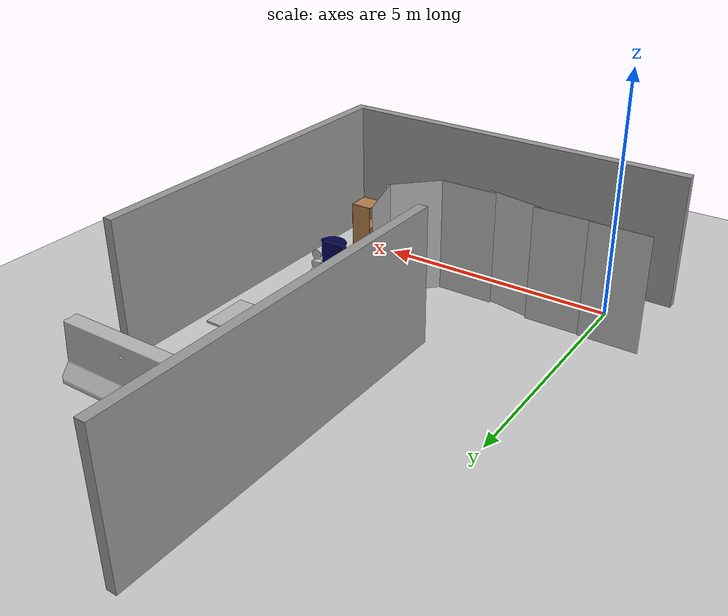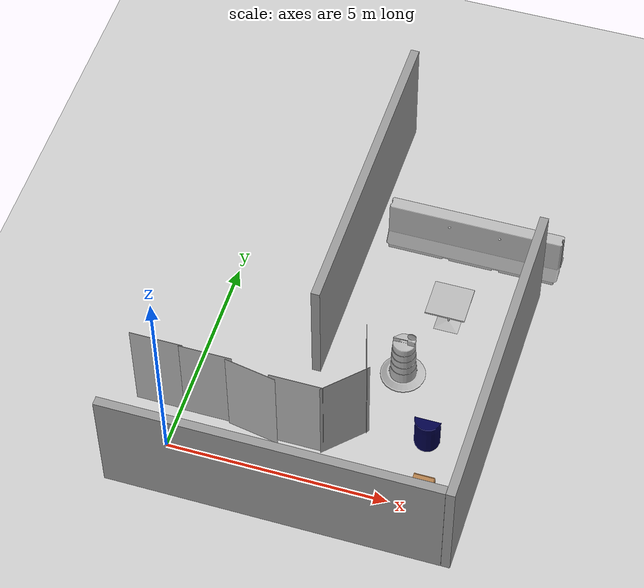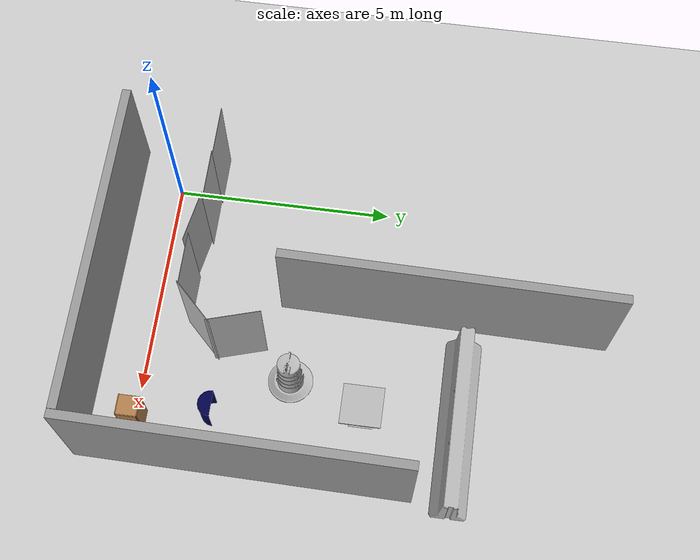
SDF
<sdf version="1.6">
 <world name="default">
  <light name="sun" type="directional">
   <pose>0 0 10 0 -0 0</pose>
   <diffuse>0.8 0.8 0.8 1</diffuse>
   <specular>0.2 0.2 0.2 1</specular>
   <attenuation>
    <range>1000</range>
    <constant>0.9</constant>
    <linear>0.01</linear>
    <quadratic>0.001</quadratic>
   </attenuation>
   <direction>-0.5 0.1 -0.9</direction>
  </light>
  <model name="ground_plane">
   <static>1</static>
   <link name="link">
    <collision name="collision">
     <geometry><plane><normal>0 0 1</normal><size>100 100</size></plane></geometry>
     <surface>
      <contact><collide_bitmask>65535</collide_bitmask></contact>
      <friction><ode><mu>100</mu><mu2>50</mu2></ode></friction>
     </surface>
    </collision>
    <visual name="visual">
     <cast_shadows>0</cast_shadows>
     <geometry><plane><normal>0 0 1</normal><size>100 100</size></plane></geometry>
     <material>
      <script><uri>file://media/materials/scripts/gazebo.material</uri><name>Gazebo/Grey</name></script>
     </material>
    </visual>
   </link>
  </model>
  <gravity>0 0 -9.8</gravity>
  <magnetic_field>6e-06 2.3e-05 -4.2e-05</magnetic_field>
  <atmosphere type="adiabatic"/>
  <physics name="default_physics" default="0" type="ode">
   <max_step_size>0.001</max_step_size>
   <real_time_factor>1</real_time_factor>
   <real_time_update_rate>1000</real_time_update_rate>
  </physics>
  <scene><ambient>0.4 0.4 0.4 1</ambient><background>0.7 0.7 0.7 1</background><shadows>1</shadows></scene>
  <spherical_coordinates>
   <surface_model>EARTH_WGS84</surface_model>
   <latitude_deg>0</latitude_deg>
   <longitude_deg>0</longitude_deg>
   <elevation>0</elevation>
   <heading_deg>0</heading_deg>
  </spherical_coordinates>
  <model name="cafe_table">
   <static>1</static>
   <link name="link">
    <collision name="surface">
     <pose>0 0 0.755 0 -0 0</pose>
     <geometry><box><size>0.913 0.913 0.04</size></box></geometry>
    </collision>
    <collision name="column">
     <pose>0 0 0.37 0 -0 0</pose>
     <geometry><box><size>0.042 0.042 0.74</size></box></geometry>
    </collision>
    <collision name="base">
     <pose>0 0 0.02 0 -0 0</pose>
     <geometry><box><size>0.56 0.56 0.04</size></box></geometry>
    </collision>
    <visual name="visual">
     <geometry><mesh><uri>model://cafe_table/meshes/cafe_table.dae</uri></mesh></geometry>
    </visual>
   </link>
   <pose>5 5 0 0 -0 0</pose>
  </model>
  <model name="grey_wall">
   <static>1</static>
   <link name="link">
    <pose>0 0 1.4 0 -0 0</pose>
    <collision name="collision"><geometry><box><size>7.5 0.2 2.8</size></box></geometry></collision>
    <visual name="visual">
     <cast_shadows>0</cast_shadows>
     <geometry><box><size>7.5 0.2 2.8</size></box></geometry>
     <material>
      <script>
       <uri>model://grey_wall/materials/scripts</uri>
       <uri>model://grey_wall/materials/textures</uri>
       <name>vrc/grey_wall</name>
      </script>
     </material>
    </visual>
   </link>
   <pose>2.75291 -1.08985 0 0 -0 0</pose>
  </model>
  <model name="grey_wall_clone">
   <static>1</static>
   <link name="link">
    <pose>0 0 1.4 0 -0 0</pose>
    <collision name="collision"><geometry><box><size>7.5 0.2 2.8</size></box></geometry></collision>
    <visual name="visual">
     <cast_shadows>0</cast_shadows>
     <geometry><box><size>7.5 0.2 2.8</size></box></geometry>
     <material>
      <script>
       <uri>model://grey_wall/materials/scripts</uri>
       <uri>model://grey_wall/materials/textures</uri>
       <name>vrc/grey_wall</name>
      </script>
     </material>
    </visual>
   </link>
   <pose>6.65645 2.56087 0 0 0 -1.58457</pose>
  </model>
  <model name="nist_maze_wall_240">
   <static>1</static>
   <link name="nist__maze_wall_240_link">
    <collision name="collision">
     <geometry>
      <mesh><uri>model://nist_maze_wall_240/meshes/nist_maze_wall_240.dae</uri><scale>1 1 1</scale></mesh>
     </geometry>
    </collision>
    <visual name="visual">
     <geometry>
      <mesh><uri>model://nist_maze_wall_240/meshes/nist_maze_wall_240.dae</uri><scale>1 1 1</scale></mesh>
     </geometry>
    </visual>
   </link>
   <pose>-0.45134 0.409954 0 0 -0 0</pose>
  </model>
  <model name="nist_maze_wall_240_0">
   <static>1</static>
   <link name="nist__maze_wall_240_link">
    <collision name="collision">
     <geometry>
      <mesh><uri>model://nist_maze_wall_240/meshes/nist_maze_wall_240.dae</uri><scale>1 1 1</scale></mesh>
     </geometry>
    </collision>
    <visual name="visual">
     <geometry>
      <mesh><uri>model://nist_maze_wall_240/meshes/nist_maze_wall_240.dae</uri><scale>1 1 1</scale></mesh>
     </geometry>
    </visual>
   </link>
   <pose>0.664319 0.383461 0 0 -0 0</pose>
  </model>
  <model name="nist_maze_wall_240_1">
   <static>1</static>
   <link name="nist__maze_wall_240_link">
    <collision name="collision">
     <geometry>
      <mesh><uri>model://nist_maze_wall_240/meshes/nist_maze_wall_240.dae</uri><scale>1 1 1</scale></mesh>
     </geometry>
    </collision>
    <visual name="visual">
     <geometry>
      <mesh><uri>model://nist_maze_wall_240/meshes/nist_maze_wall_240.dae</uri><scale>1 1 1</scale></mesh>
     </geometry>
    </visual>
   </link>
   <pose>1.60536 0.249326 0 0 0 -0.172368</pose>
  </model>
  <model name="nist_maze_wall_240_2">
   <static>1</static>
   <link name="nist__maze_wall_240_link">
    <collision name="collision">
     <geometry>
      <mesh><uri>model://nist_maze_wall_240/meshes/nist_maze_wall_240.dae</uri><scale>1 1 1</scale></mesh>
     </geometry>
    </collision>
    <visual name="visual">
     <geometry>
      <mesh><uri>model://nist_maze_wall_240/meshes/nist_maze_wall_240.dae</uri><scale>1 1 1</scale></mesh>
     </geometry>
    </visual>
   </link>
   <pose>2.72283 0.223769 0 0 -0 0</pose>
  </model>
  <model name="nist_maze_wall_240_3">
   <static>1</static>
   <link name="nist__maze_wall_240_link">
    <collision name="collision">
     <geometry>
      <mesh><uri>model://nist_maze_wall_240/meshes/nist_maze_wall_240.dae</uri><scale>1 1 1</scale></mesh>
     </geometry>
    </collision>
    <visual name="visual">
     <geometry>
      <mesh><uri>model://nist_maze_wall_240/meshes/nist_maze_wall_240.dae</uri><scale>1 1 1</scale></mesh>
     </geometry>
    </visual>
   </link>
   <pose>4.11258 0.776914 0 0 -0 0.787103</pose>
  </model>
  <model name="nist_maze_wall_240_4">
   <static>1</static>
   <link name="nist__maze_wall_240_link">
    <collision name="collision">
     <geometry>
      <mesh><uri>model://nist_maze_wall_240/meshes/nist_maze_wall_240.dae</uri><scale>1 1 1</scale></mesh>
     </geometry>
    </collision>
    <visual name="visual">
     <geometry>
      <mesh><uri>model://nist_maze_wall_240/meshes/nist_maze_wall_240.dae</uri><scale>1 1 1</scale></mesh>
     </geometry>
    </visual>
   </link>
   <pose>3.32677 1.92843 0 0 0 -1.27729</pose>
  </model>
  <model name="nist_fiducial_barrel">
   <static>1</static>
   <link name="nist_fiducial_barrel_link">
    <collision name="collision">
     <geometry>
      <mesh><uri>model://nist_fiducial_barrel/meshes/nist_fiducial_barrel.dae</uri><scale>1 1 1</scale></mesh>
     </geometry>
    </collision>
    <visual name="visual">
     <geometry>
      <mesh><uri>model://nist_fiducial_barrel/meshes/nist_fiducial_barrel.dae</uri><scale>1 1 1</scale></mesh>
     </geometry>
    </visual>
   </link>
   <pose>5.39785 1.14617 -0.36068 0 -0 0</pose>
  </model>
  <model name="jersey_barrier">
   <static>1</static>
   <link name="link">
    <visual name="visual">
     <geometry><mesh><uri>model://jersey_barrier/meshes/jersey_barrier.dae</uri></mesh></geometry>
    </visual>
    <collision name="upright">
     <pose>0 0 0.5715 0 -0 0</pose>
     <geometry><box><size>4.06542 0.3063 1.143</size></box></geometry>
    </collision>
    <collision name="base">
     <pose>0 0 0.032258 0 -0 0</pose>
     <geometry><box><size>4.06542 0.8107 0.064516</size></box></geometry>
    </collision>
    <collision name="base2">
     <pose>0 0 0.1 0 -0 0</pose>
     <geometry><box><size>4.06542 0.65 0.1</size></box></geometry>
    </collision>
    <collision name="base3">
     <pose>0 0 0.2 0 -0 0</pose>
     <geometry><box><size>4.06542 0.5 0.1</size></box></geometry>
    </collision>
    <collision name="left-angle">
     <pose>0 -0.224 0.2401 0.9 -0 0</pose>
     <geometry><box><size>4.06542 0.5 0.064516</size></box></geometry>
    </collision>
    <collision name="right-angle">
     <pose>0 0.224 0.2401 -0.9 0 0</pose>
     <geometry><box><size>4.06542 0.5 0.064516</size></box></geometry>
    </collision>
   </link>
   <pose>5.05363 7.11445 0 0 -0 0</pose>
  </model>
  <model name="Construction Barrel">
   <link name="link">
    <inertial>
     <pose>0 0 0.4 0 -0 0</pose>
     <mass>500</mass>
     <inertia><ixx>51.2096</ixx><iyy>51.2096</iyy><izz>25</izz><ixy>0</ixy><ixz>0</ixz><iyz>0</iyz></inertia>
    </inertial>
    <collision name="collision">
     <geometry><mesh><uri>model://construction_barrel/meshes/construction_barrel.dae</uri></mesh></geometry>
    </collision>
    <visual name="visual">
     <geometry><mesh><uri>model://construction_barrel/meshes/construction_barrel.dae</uri></mesh></geometry>
    </visual>
   </link>
   <pose>4.40554 3.30764 -0 0 -0 -3.5e-05</pose>
  </model>
  <model name="cabinet">
   <static>1</static>
   <link name="cabinet_bottom_plate">
    <inertial>
     <pose>0 0 -1 0 -0 0</pose>
     <inertia><ixx>2.05</ixx><ixy>0</ixy><ixz>0</ixz><iyy>2.05</iyy><iyz>0</iyz><izz>2.05</izz></inertia>
     <mass>25</mass>
    </inertial>
    <collision name="cabinet_bottom_plate_geom">
     <pose>0 0 0.01 0 -0 0</pose>
     <geometry><box><size>0.45 0.45 0.02</size></box></geometry>
    </collision>
    <visual name="cabinet_bottom_plate_geom_visual">
     <pose>0 0 0.01 0 -0 0</pose>
     <geometry><box><size>0.45 0.45 0.02</size></box></geometry>
     <material>
      <script><uri>file://media/materials/scripts/gazebo.material</uri><name>Gazebo/Wood</name></script>
     </material>
    </visual>
    <collision name="cabinet_bottom_plate_geom_cabinet_back_plate">
     <pose>0.235 0 0.51 0 -0 0</pose>
     <geometry><box><size>0.02 0.45 1.02</size></box></geometry>
    </collision>
    <visual name="cabinet_bottom_plate_geom_cabinet_back_plate_visual">
     <pose>0.235 0 0.51 0 -0 0</pose>
     <geometry><box><size>0.02 0.45 1.02</size></box></geometry>
     <material>
      <script><uri>file://media/materials/scripts/gazebo.material</uri><name>Gazebo/Wood</name></script>
     </material>
    </visual>
    <collision name="cabinet_bottom_plate_geom_cabinet_left_plate">
     <pose>0 0.235 0.51 0 -0 0</pose>
     <geometry><box><size>0.45 0.02 1.02</size></box></geometry>
    </collision>
    <visual name="cabinet_bottom_plate_geom_cabinet_left_plate_visual">
     <pose>0 0.235 0.51 0 -0 0</pose>
     <geometry><box><size>0.45 0.02 1.02</size></box></geometry>
     <material>
      <script><uri>file://media/materials/scripts/gazebo.material</uri><name>Gazebo/Wood</name></script>
     </material>
    </visual>
    <collision name="cabinet_bottom_plate_geom_cabinet_middle_plate">
     <pose>0 0 0.51 0 -0 0</pose>
     <geometry><box><size>0.45 0.45 0.02</size></box></geometry>
    </collision>
    <visual name="cabinet_bottom_plate_geom_cabinet_middle_plate_visual">
     <pose>0 0 0.51 0 -0 0</pose>
     <geometry><box><size>0.45 0.45 0.02</size></box></geometry>
     <material>
      <script><uri>file://media/materials/scripts/gazebo.material</uri><name>Gazebo/Wood</name></script>
     </material>
    </visual>
    <collision name="cabinet_bottom_plate_geom_cabinet_right_plate">
     <pose>0 -0.235 0.51 0 -0 0</pose>
     <geometry><box><size>0.45 0.02 1.02</size></box></geometry>
    </collision>
    <visual name="cabinet_bottom_plate_geom_cabinet_right_plate_visual">
     <pose>0 -0.235 0.51 0 -0 0</pose>
     <geometry><box><size>0.45 0.02 1.02</size></box></geometry>
     <material>
      <script><uri>file://media/materials/scripts/gazebo.material</uri><name>Gazebo/Wood</name></script>
     </material>
    </visual>
    <collision name="cabinet_bottom_plate_geom_cabinet_top_plate">
     <pose>0 0 1.01 0 -0 0</pose>
     <geometry><box><size>0.45 0.45 0.02</size></box></geometry>
    </collision>
    <visual name="cabinet_bottom_plate_geom_cabinet_top_plate_visual">
     <pose>0 0 1.01 0 -0 0</pose>
     <geometry><box><size>0.45 0.45 0.02</size></box></geometry>
     <material>
      <script><uri>file://media/materials/scripts/gazebo.material</uri><name>Gazebo/Wood</name></script>
     </material>
    </visual>
   </link>
   <pose>5.72811 -0.012074 0 0 -0 0</pose>
  </model>
  <model name="grey_wall_clone_clone">
   <static>1</static>
   <link name="link">
    <pose>0 0 1.4 0 -0 0</pose>
    <collision name="collision"><geometry><box><size>7.5 0.2 2.8</size></box></geometry></collision>
    <visual name="visual">
     <cast_shadows>0</cast_shadows>
     <geometry><box><size>7.5 0.2 2.8</size></box></geometry>
     <material>
      <script>
       <uri>model://grey_wall/materials/scripts</uri>
       <uri>model://grey_wall/materials/textures</uri>
       <name>vrc/grey_wall</name>
      </script>
     </material>
    </visual>
   </link>
   <pose>2.58114 6.58675 0 0 0 -1.58457</pose>
  </model>
 </world>
</sdf>
